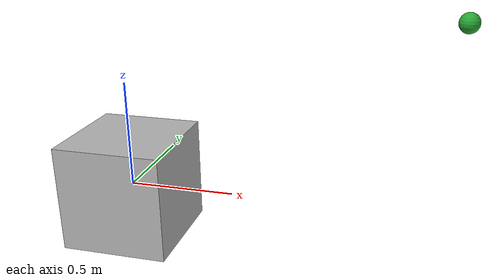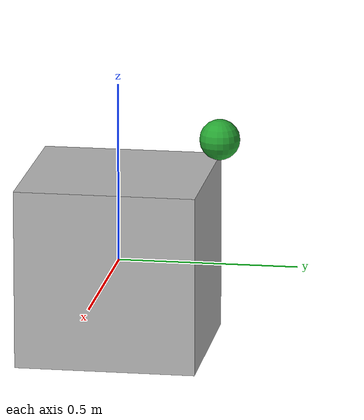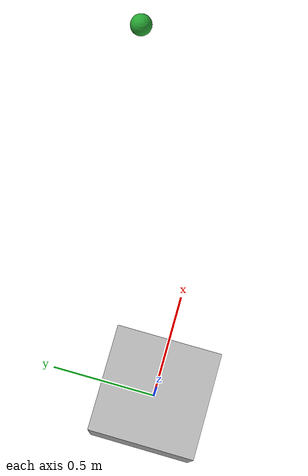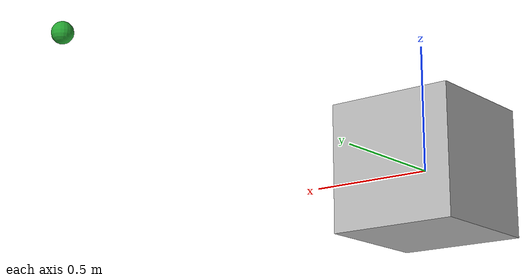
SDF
<?xml version="1.0" ?>
<sdf version='1.7'>
  <model name='camera_model'>
    <pose>0 0 0 0 0 0</pose>
    <static>false</static>
      <link name="camera">
      <pose>0 0 0 0 0 0</pose>
      <inertial>
          <mass>10</mass>
          <inertia>
              <ixx>0</ixx>
              <ixy>0</ixy>
              <iyy>0</iyy>
              <ixz>0</ixz>
              <iyz>0</iyz>
              <izz>0</izz>
          </inertia>
      </inertial>
      <collision name="collision">
          <geometry>
              <box>
                  <size>0.5 0.5 0.5</size>
              </box>
          </geometry>
      </collision>
      <visual name="visual">
          <geometry>
              <box>
                  <size>0.5 0.5 0.5</size>
              </box>
          </geometry>
      </visual>
      <visual name='cam'>
          <pose>1.5 0.5 0.75 0 0 0</pose>
          <geometry>
              <sphere>
                  <radius>.05</radius>
              </sphere>
          </geometry>
          <material>
            <script>
              <uri>file://media/materials/scripts/gazebo.material</uri>
              <name>Gazebo/Green</name>
            </script>
          </material>
      </visual>
      <sensor name='cam_sensor' type='camera'>
          <pose>1.5 0.5 0.75 0 0 0</pose>
          <update_rate>20.000000</update_rate>
          <camera name='camera'>
              <horizontal_fov>1.570000</horizontal_fov>
              <image>
                  <width>320</width>
                  <height>240</height>
                  <format>R8G8B8</format>
              </image>
              <clip>
                  <near>0.100000</near>
                  <far>15.000000</far>
              </clip>
          </camera>
          <plugin name="camera_controller" filename="libgazebo_ros_camera.so">
              <alwaysOn>true</alwaysOn>
              <updateRate>0.0</updateRate>
              <cameraName>camera_model</cameraName>
              <imageTopicName>image_raw</imageTopicName>
              <cameraInfoTopicName>camera_info</cameraInfoTopicName>
              <frameName>camera_top_body</frameName>
              <hackBaseline>0.07</hackBaseline>
              <distortionK1>0.0</distortionK1>
              <distortionK2>0.0</distortionK2>
              <distortionK3>0.0</distortionK3>
              <distortionT1>0.0</distortionT1>
              <distortionT2>0.0</distortionT2>
          </plugin>
      </sensor>
      </link>
  </model>
</sdf>
